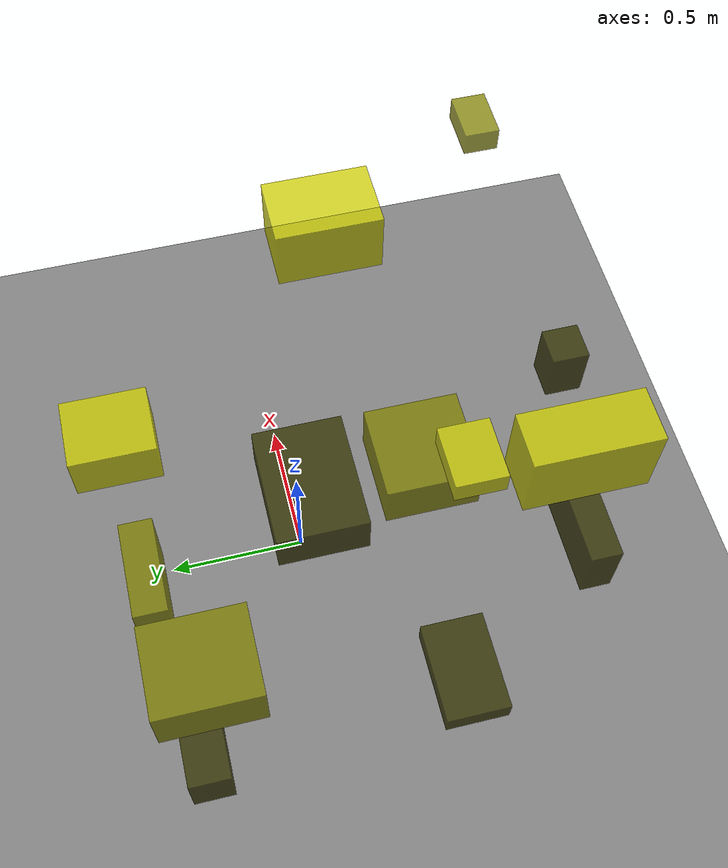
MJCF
<?xml version="1.0"?>
<mujoco model="obstacle_scene">
  <compiler angle="radian" coordinate="local"/>
  <option timestep="0.001" gravity="0 0 -9.81"/>

  <asset>
    <material name="obstacle_mat" rgba="0.8 0.8 0.0 0.8"/>
    <material name="ground_mat" rgba="0.5 0.5 0.5 1"/>
  </asset>

  <worldbody>
    <!-- Ground plane -->
    <geom name="ground" type="plane" size="3 3 0.1" material="ground_mat"/>

    <!-- Obstacles -->
    <body name="obstacle_0" pos="-0.260048 -0.002398 0.917840">
      <geom name="obs_0" type="box" size="0.194565 0.145174 0.080101" rgba="0.2 0.2 0.0 0.8"/>
    </body>
    <body name="obstacle_1" pos="0.761134 -0.805964 1.312925">
      <geom name="obs_1" type="box" size="0.086796 0.056796 0.040711" rgba="0.5 0.5 0.0 0.8"/>
    </body>
    <body name="obstacle_2" pos="-0.442360 -0.444732 1.246693">
      <geom name="obs_2" type="box" size="0.098766 0.078863 0.039225" rgba="0.8 0.8 0.0 0.8"/>
    </body>
    <body name="obstacle_3" pos="-0.748057 -0.416217 0.314726">
      <geom name="obs_3" type="box" size="0.171289 0.110975 0.044174" rgba="0.2 0.2 0.0 0.8"/>
    </body>
    <body name="obstacle_4" pos="-0.423204 0.547057 0.838386">
      <geom name="obs_4" type="box" size="0.154184 0.052645 0.130922" rgba="0.5 0.5 0.0 0.8"/>
    </body>
    <body name="obstacle_5" pos="0.130606 0.588145 0.812128">
      <geom name="obs_5" type="box" size="0.121255 0.144601 0.091322" rgba="0.8 0.8 0.0 0.8"/>
    </body>
    <body name="obstacle_6" pos="-0.368299 -0.942751 0.468836">
      <geom name="obs_6" type="box" size="0.202288 0.054877 0.122614" rgba="0.2 0.2 0.0 0.8"/>
    </body>
    <body name="obstacle_7" pos="-0.842403 0.423436 1.118133">
      <geom name="obs_7" type="box" size="0.134437 0.153828 0.091627" rgba="0.5 0.5 0.0 0.8"/>
    </body>
    <body name="obstacle_8" pos="-0.459825 -0.786224 1.189462">
      <geom name="obs_8" type="box" size="0.088356 0.197669 0.132565" rgba="0.8 0.8 0.0 0.8"/>
    </body>
    <body name="obstacle_9" pos="-0.828206 0.479199 0.587604">
      <geom name="obs_9" type="box" size="0.194200 0.065851 0.094822" rgba="0.2 0.2 0.0 0.8"/>
    </body>
    <body name="obstacle_10" pos="-0.108867 -0.418096 0.696256">
      <geom name="obs_10" type="box" size="0.162298 0.162385 0.094443" rgba="0.5 0.5 0.0 0.8"/>
    </body>
    <body name="obstacle_11" pos="0.854536 -0.297572 0.828671">
      <geom name="obs_11" type="box" size="0.132038 0.197326 0.127206" rgba="0.8 0.8 0.0 0.8"/>
    </body>
    <body name="obstacle_12" pos="0.031350 -0.931387 0.902611">
      <geom name="obs_12" type="box" size="0.062532 0.060868 0.098782" rgba="0.2 0.2 0.0 0.8"/>
    </body>
  </worldbody>
</mujoco>
